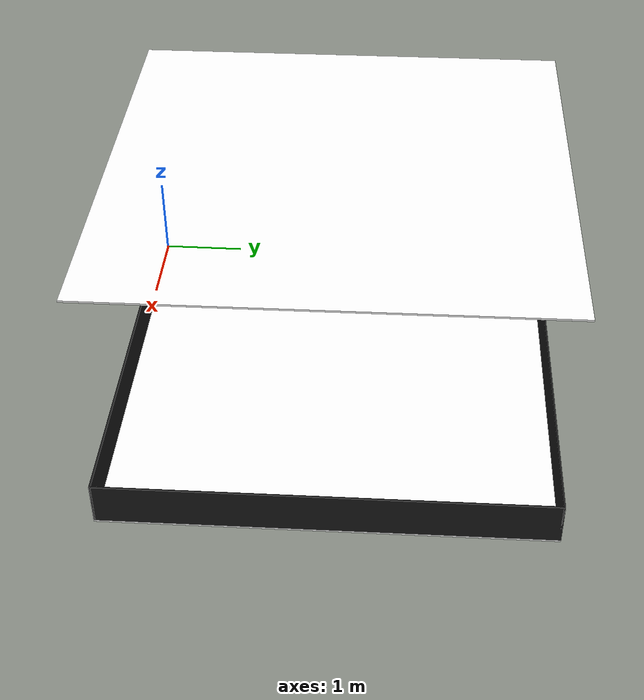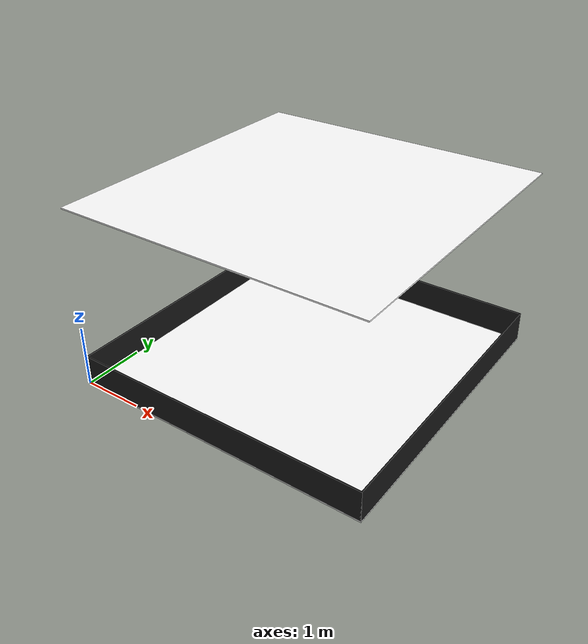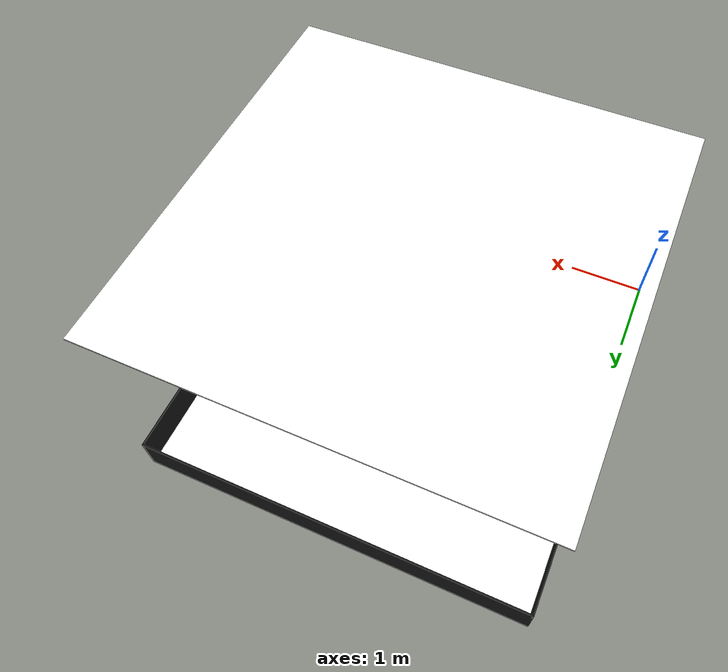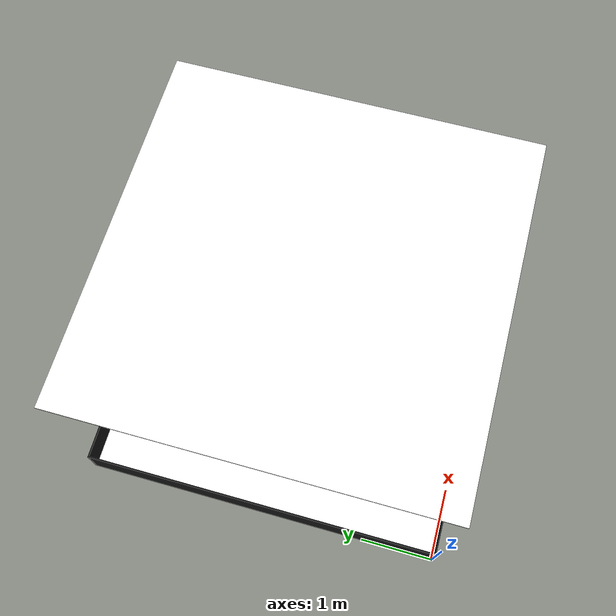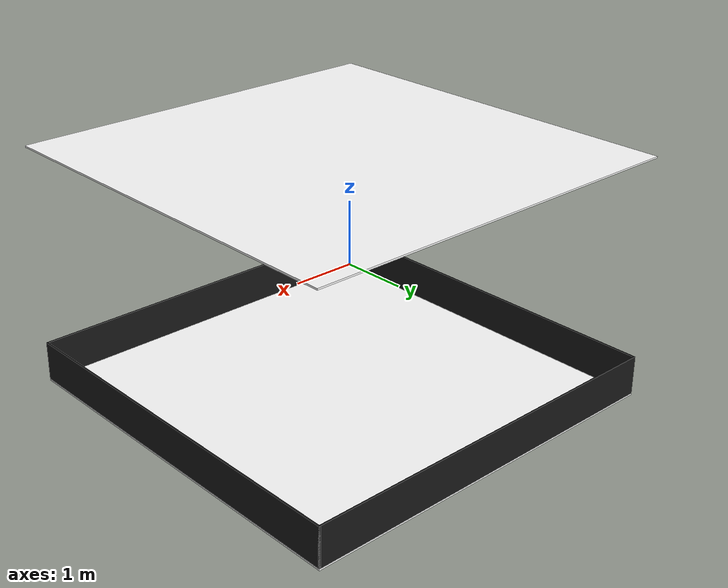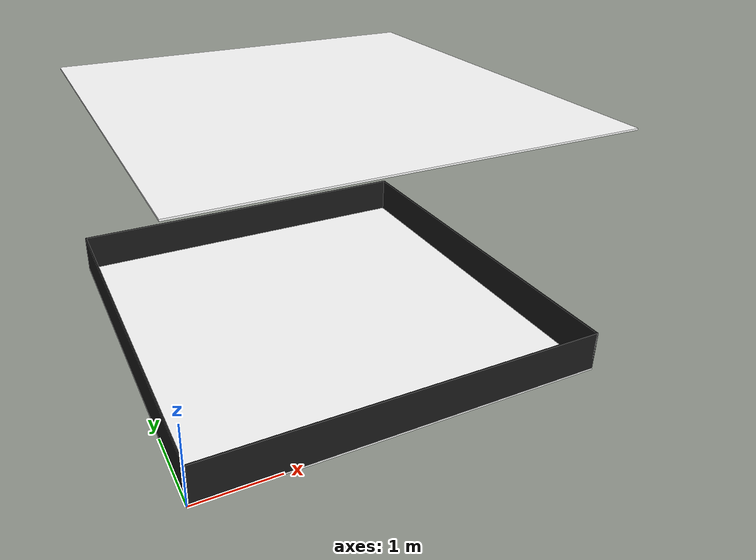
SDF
<?xml version="1.0" ?>
<sdf version="1.6">
  <world name="vlp_room_world">

    <!-- Restrict ambient illumination to isolate VLP emitting sources -->
    <scene>
      <ambient>1  1  1 1</ambient>
      <background>0 0 0 1</background>
      <shadows>true</shadows>
    </scene>

    <!-- Room Envelope Without Walls (5m x 5m x 3m) -->
    <model name="room_5x5x3">
      <static>true</static>
      <pose>2.5 2.5 0 0 0 0</pose>
      <link name="structure">
        <!-- Ceiling and Floor -->
        <visual name="ceiling_visual">
          <pose>0 0 3.01 0 0 0</pose>
          <geometry><box><size>5 5 0.02</size></box></geometry>
          <material>
            <ambient>1 1 1 1</ambient>
            <diffuse>1 1 1 1</diffuse>
          </material>
        </visual>
        <collision name="ceiling_collision">
          <pose>0 0 3.01 0 0 0</pose>
          <geometry><box><size>5 5 0.02</size></box></geometry>
        </collision>

        <visual name="floor_visual">
          <pose>0 0 -0.01 0 0 0</pose>
          <geometry><box><size>5 5 0.02</size></box></geometry>
          <material>
            <ambient>1 1 1 1</ambient>
            <diffuse>1 1 1 1</diffuse>
          </material>
        </visual>
        <collision name="floor_collision">
          <pose>0 0 -0.01 0 0 0</pose>
          <geometry><box><size>5 5 0.02</size></box></geometry>
        </collision>

        <!-- Boundary walls to show limits (50 cm height) -->
        <visual name="boundary_north_visual">
          <pose>2.49 0 0.25 0 0 0</pose>
          <geometry><box><size>0.02 5 0.5</size></box></geometry>
          <material><ambient>0.1 0.1 0.1 1</ambient></material>
        </visual>
        <collision name="boundary_north_collision">
          <pose>2.49 0 0.25 0 0 0</pose>
          <geometry><box><size>0.02 5 0.5</size></box></geometry>
        </collision>

        <visual name="boundary_south_visual">
          <pose>-2.49 0 0.25 0 0 0</pose>
          <geometry><box><size>0.02 5 0.5</size></box></geometry>
          <material><ambient>0.1 0.1 0.1 1</ambient></material>
        </visual>
        <collision name="boundary_south_collision">
          <pose>-2.49 0 0.25 0 0 0</pose>
          <geometry><box><size>0.02 5 0.5</size></box></geometry>
        </collision>

        <visual name="boundary_east_visual">
          <pose>0 2.49 0.25 0 0 0</pose>
          <geometry><box><size>5 0.02 0.5</size></box></geometry>
          <material><ambient>0.1 0.1 0.1 1</ambient></material>
        </visual>
        <collision name="boundary_east_collision">
          <pose>0 2.49 0.25 0 0 0</pose>
          <geometry><box><size>5 0.02 0.5</size></box></geometry>
        </collision>

        <visual name="boundary_west_visual">
          <pose>0 -2.49 0.25 0 0 0</pose>
          <geometry><box><size>5 0.02 0.5</size></box></geometry>
          <material><ambient>0.1 0.1 0.1 1</ambient></material>
        </visual>
        <collision name="boundary_west_collision">
          <pose>0 -2.49 0.25 0 0 0</pose>
          <geometry><box><size>5 0.02 0.5</size></box></geometry>
        </collision>

        <!-- Grid plane aligned with the floor top surface -->
        <visual name="grid_visual">
          <pose>0 0 0.001 0 0 0</pose>
          <geometry><plane><normal>0 0 1</normal><size>5 5</size></plane></geometry>
          <material>
            <script>
              <uri>file://media/materials/scripts/gazebo.material</uri>
              <name>Gazebo/GrayGrid</name>
            </script>
          </material>
        </visual>

      </link>
    </model>

    <include>
        <name>luminaire_1</name>
        <uri>model://ledBulb</uri>
        <pose>1.0 1.0 3.0 0 0 0</pose>
      </include>

      <include>
        <name>luminaire_2</name>
        <uri>model://ledBulb</uri>
        <pose>2.5 1.0 3.0 0 0 0</pose>
      </include>

      <include>
        <name>luminaire_3</name>
        <uri>model://ledBulb</uri>
        <pose>4.0 1.0 3.0 0 0 0</pose>
      </include>

      <include>
        <name>luminaire_4</name>
        <uri>model://ledBulb</uri>
        <pose>1.0 2.5 3.0 0 0 0</pose>
      </include>

      <include>
        <name>luminaire_5</name>
        <uri>model://ledBulb</uri>
        <pose>2.5 2.5 3.0 0 0 0</pose>
      </include>

      <include>
        <name>luminaire_6</name>
        <uri>model://ledBulb</uri>
        <pose>4.0 2.5 3.0 0 0 0</pose>
      </include>

      <include>
        <name>luminaire_7</name>
        <uri>model://ledBulb</uri>
        <pose>1.0 4.0 3.0 0 0 0</pose>
      </include>

      <include>
        <name>luminaire_8</name>
        <uri>model://ledBulb</uri>
        <pose>2.5 4.0 3.0 0 0 0</pose>
      </include>

      <include>
        <name>luminaire_9</name>
        <uri>model://ledBulb</uri>
        <pose>4.0 4.0 3.0 0 0 0</pose>
      </include>

  </world>
</sdf>

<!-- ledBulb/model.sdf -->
<sdf version="1.6">
  <model name="ledBulb">
    <static>true</static>
    <link name="lamp">
      <!-- Socket Visual -->
      <visual name="socket_visual">
        <pose>0 0 -0.04 0 0 0</pose>
        <geometry>
          <cylinder>
            <radius>0.045</radius>
            <length>0.08</length>
          </cylinder>
        </geometry>
        <material>
          <ambient>0.5 0.5 0.5 1</ambient>
          <diffuse>0.7 0.7 0.7 1</diffuse>
        </material>
      </visual>

      <!-- Bulb Visual (Sphere) -->
      <visual name="bulb_visual">
        <pose>0 0 -0.12 0 0 0</pose>
        <geometry>
          <sphere>
            <radius>0.06</radius>
          </sphere>
        </geometry>
        <material>
          <ambient>1 1 0.8 1</ambient>
          <diffuse>1 1 0.9 1</diffuse>
          <emissive>1 1 0.5 1</emissive>
        </material>
      </visual>

      <!-- Point Light Source -->
      <light name="led_light" type="point">
        <pose>0 0 -0.12 0 0 0</pose>
        <diffuse>1 1 1 1</diffuse>
        <specular>1 1 1 1</specular>
        <attenuation>
          <range>12</range>
          <constant>0.4</constant>
          <linear>0.02</linear>
          <quadratic>0.002</quadratic>
        </attenuation>
        <cast_shadows>true</cast_shadows>
      </light>
    </link>
  </model>
</sdf>
